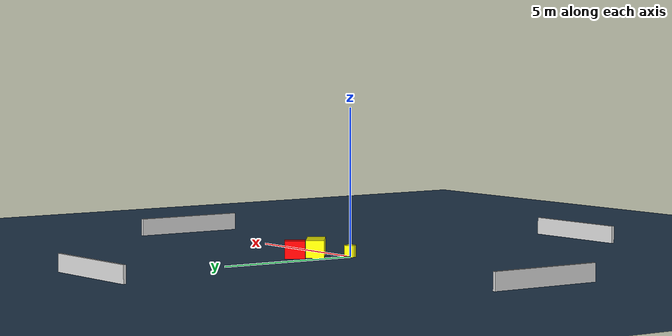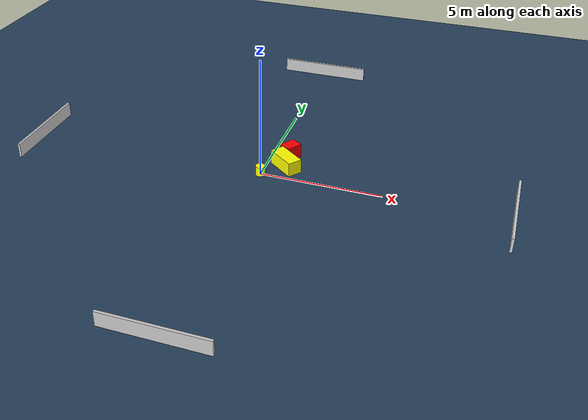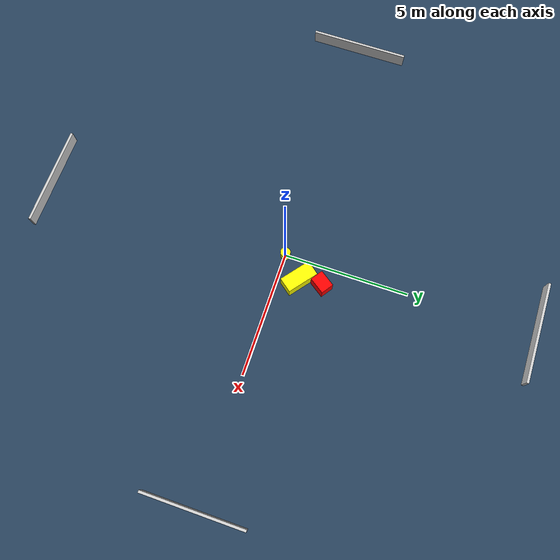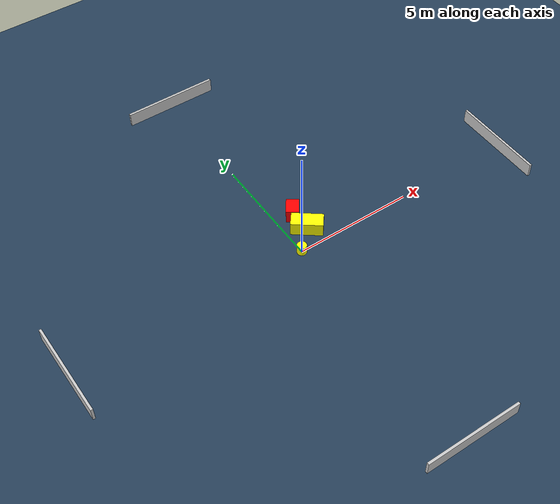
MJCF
<?xml version="1.0" ?>
<mujoco model="generated_environment">
  <option timestep="0.01" integrator="RK4" cone="elliptic"/>
  <default>
    <geom density="1"/>
  </default>
  <asset>
    <texture builtin="gradient" height="3072" name="skybox" rgb1="0.3 0.5 0.7" rgb2="0 0 0" type="skybox" width="512"/>
    <texture builtin="checker" height="300" name="groundplane" rgb1="0.2 0.3 0.4" rgb2="0.1 0.2 0.3" type="2d" width="300"/>
    <material name="groundplane" reflectance="0.2" texrepeat="5 5" texture="groundplane"/>
  </asset>
  <worldbody>
    <light dir="0 0 -1" directional="true" pos="0 0 1.5"/>
    <geom condim="3" friction="0.5 0.005 0.001" material="groundplane" name="floor" pos="0 0 0" size="0 0 0.05" type="plane"/>
    <body name="walls">
      <geom name="wall_1" condim="4" pos="-10.0 0.0 0.3" rgba="0.800000011920929 0.800000011920929 0.800000011920929 1.0" size="0.05 2.0 0.3" type="box"/>
      <geom name="wall_2" condim="4" pos="10.0 0.0 0.3" rgba="0.800000011920929 0.800000011920929 0.800000011920929 1.0" size="0.05 2.0 0.3" type="box"/>
      <geom name="wall_3" condim="4" pos="0.0 -10.0 0.3" rgba="0.800000011920929 0.800000011920929 0.800000011920929 1.0" size="2.0 0.05 0.3" type="box"/>
      <geom name="wall_4" condim="4" pos="0.0 10.0 0.3" rgba="0.800000011920929 0.800000011920929 0.800000011920929 1.0" size="2.0 0.05 0.3" type="box"/>
    </body>
    <body name="robot">
      <joint name="joint_x" type="slide" pos="0 0 0" axis="1 0 0"/>
      <joint name="joint_y" type="slide" pos="0 0 0" axis="0 1 0"/>
      <geom name="robot" type="cylinder" pos="0.0 0.0 0.2" size="0.2 0.2 0.0" mass="5.0" friction="1.0 0.005 0.0001" condim="4" rgba="1.0 1.0 0.0 1.0"/>
    </body>
    <body name="obstacle_1_movable">
      <geom name="obstacle_1_movable" condim="4" pos="0.8248002005424175 0.8275142911118176 0.3" euler="0 0 51.93152988260172" friction="0.0 0.005 0.001" rgba="1.0 1.0 0.0 1.0" size="0.3058932762053476 0.6457845612601667 0.3" type="box" mass="0.1"/>
      <joint type="free"/>
    </body>
    <body name="obstacle_2_static">
      <geom name="obstacle_2_static" condim="4" pos="0.753428398236653 1.7312662396000735 0.3" euler="0 0 235.44457946883264" friction="0.0 0.005 0.001" rgba="1.0 0.0 0.0 1.0" size="0.34520221162588705 0.26273820699923556 0.3" type="box"/>
    </body>
  </worldbody>
  <actuator>
    <motor name="actuator_x" joint="joint_x" gear="1" ctrlrange="-1 1"/>
    <motor name="actuator_y" joint="joint_y" gear="1" ctrlrange="-1 1"/>
  </actuator>
</mujoco>
